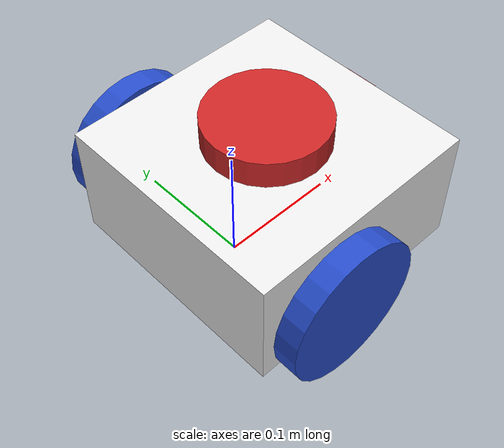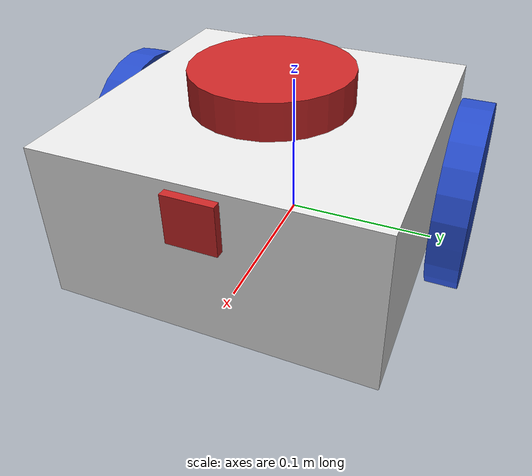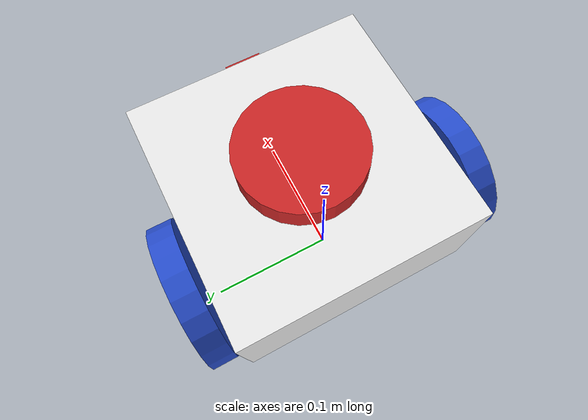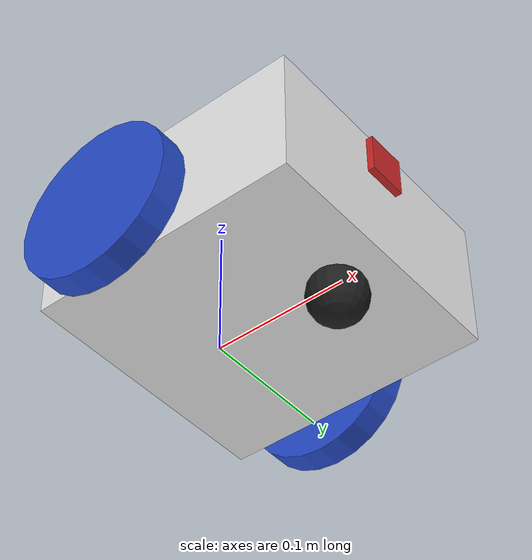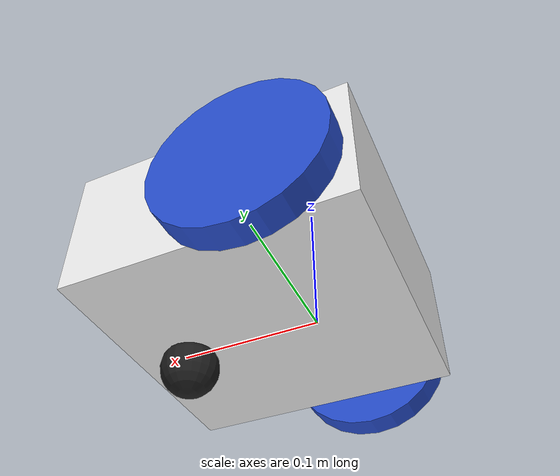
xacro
<?xml version="1.0"?>
<robot xmlns:xacro="http://www.ros.org/wiki/xacro"  name="robot">

    <xacro:include filename="inertial_macros.xacro"/>

    <!-- base link -->

    <link name="base_link"/>

    <!-- chassis -->
    <joint name="chassis_joint" type="fixed">
        <parent link="base_link"/>
        <child link="chassis"/>
        <origin xyz="-0.065 0 0"/>
    </joint>

    <link name="chassis" >
        <visual>
            <origin xyz="0.1 0 0.05"/>
            <geometry>
                <box size="0.2 0.2 0.1"/>
            </geometry>
        </visual>
        <collision>
            <origin xyz="0.1 0 0.05"/>
            <geometry>
                <box size="0.2 0.2 0.1"/>
            </geometry>
        </collision>
        <xacro:inertial_box mass="2" x="0.2" y="0.2" z="0.1">
            <origin xyz="0.1 0 0.05" rpy="0 0 0"/>
        </xacro:inertial_box>
    </link>
    <gazebo reference="chassis">
        <material>Gazebo/White</material>
    </gazebo>

    <!-- right wheel -->
    <joint name="right_wheel_joint" type="continuous">
        <parent link="base_link"/>
        <child link="right_wheel"/>
        <origin xyz="0 -0.115 0.04" rpy="${pi/2} 0 0" />
        <axis xyz="0 0 -1"/>
    </joint>

    <link name="right_wheel">
        <visual>
            <geometry>
                <cylinder radius="0.06" length="0.02"/>
            </geometry>
        </visual>
        <collision>
            <geometry>
                <cylinder radius="0.06" length="0.02"/>
            </geometry>
        </collision>
        <xacro:inertial_cylinder mass="0.1" length="0.02" radius="0.06">
            <origin xyz="0 0 0" rpy="0 0 0"/>
        </xacro:inertial_cylinder>
    </link>

    <gazebo reference="right_wheel">
        <material>Gazebo/Blue</material>
    </gazebo>

    <!-- left wheel -->
    <joint name="left_wheel_joint" type="continuous">
        <parent link="base_link"/>
        <child link="left_wheel"/>
        <origin xyz="0 0.115 0.04" rpy="-${pi/2} 0 0" />
        <axis xyz="0 0 1"/>
    </joint>

    <link name="left_wheel">
        <visual>
            <geometry>
                <cylinder radius="0.06" length="0.02"/>
            </geometry>
        </visual>
        <collision>
            <geometry>
                <cylinder radius="0.06" length="0.02"/>
            </geometry>
        </collision>
        <xacro:inertial_cylinder mass="0.1" length="0.02" radius="0.06">
            <origin xyz="0 0 0" rpy="0 0 0"/>
        </xacro:inertial_cylinder>
    </link>

    <gazebo reference="left_wheel">
        <material>Gazebo/Blue</material>
    </gazebo>

     <!-- CASTER WHEEL LINK -->

    <joint name="caster_wheel_joint" type="fixed">
        <parent link="base_link"/>
        <child link="caster_wheel"/>
        <origin xyz="0.096 0 -0.010"/>
    </joint>

    <link name="caster_wheel">
        <visual>
            <geometry>
                <sphere radius="0.021"/>
            </geometry>
        </visual>
        <collision>
            <geometry>
                <sphere radius="0.021"/>
            </geometry>
        </collision>
        <xacro:inertial_sphere mass="0.5" radius="0.021">
            <origin xyz="0 0 0" rpy="0 0 0"/>
        </xacro:inertial_sphere>
    </link>

    <gazebo reference="caster_wheel">
        <material>Gazebo/Black</material>
        <mu1 value="0.001"/>
        <mu2 value="0.001"/>
    </gazebo>

    <!-- including sensor control -->
    <xacro:include filename="gazebo_control.xacro" />

    <xacro:include filename="sensor.xacro" />
</robot>

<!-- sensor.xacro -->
<robot xmlns:xacro="http://www.ros.org/wiki/xacro" >

    <joint name="camera_joint" type="fixed">
        <parent link="chassis"/>
        <child link="camera_link"/>
        <origin xyz="0.200 0 0.08" rpy="0 0 0"/>
    </joint>

    <link name="camera_link">
        <visual>
            <geometry>
                <box size="0.010 0.03 0.03"/>
            </geometry>
        </visual>
    </link>

    <joint name="camera_optical_joint" type="fixed">
        <parent link="camera_link"/>
        <child link="camera_link_optical"/>
        <origin xyz="0 0 0" rpy="${-pi/2} 0 ${-pi/2}"/>
    </joint>

    <link name="camera_link_optical"></link>

    <gazebo reference="camera_link">
        <material>Gazebo/Red</material>

        <sensor name="camera" type="camera">
            <pose> 0 0 0 0 0 0 </pose>
            <visualize>false</visualize>
            <update_rate>10</update_rate>
            <camera>
                <horizontal_fov>1.089</horizontal_fov>
                <image>
                    <format>R8G8B8</format>
                    <width>640</width>
                    <height>480</height>
                </image>
                <clip>
                    <near>0.05</near>
                    <far>8.0</far>
                </clip>
            </camera>
            <plugin name="camera_controller" filename="libgazebo_ros_camera.so">
                <frame_name>camera_link_optical</frame_name>
            </plugin>
        </sensor>
    </gazebo>

    <joint name="laser_joint" type="fixed">
        <parent link="chassis"/>
        <child link="laser_frame"/>
        <origin xyz="0.1 0 0.103" rpy="0 0 0"/>
    </joint>

    <link name="laser_frame">
        <visual>
            <geometry>
                <cylinder radius="0.05" length="0.04"/>
            </geometry>
        </visual>
        <collision>
            <geometry>
                <cylinder radius="0.05" length="0.04"/>
            </geometry>
        </collision>
        <xacro:inertial_cylinder mass="0.1" length="0.04" radius="0.05">
            <origin xyz="0 0 0" rpy="0 0 0"/>
        </xacro:inertial_cylinder>
    </link>

    <gazebo reference="laser_frame">
        <material>Gazebo/Red</material>
        <sensor name="laser" type="ray">
            <pose>0 0 0 0 0 0</pose>
            <visualize>False</visualize>
            <update_rate>10</update_rate>
            <ray>
                <scan>
                    <horizontal>
                        <samples>360</samples>
                        <min_angle>-3.14</min_angle>
                        <max_angle>3.14</max_angle>
                    </horizontal>
                </scan>
                <range>
                    <min>0.75</min>
                    <max>6</max>
                </range>
            </ray>
            <plugin name="laser_controller" filename="libgazebo_ros_ray_sensor.so">
                <ros>
                    <argument>~/out:=scan</argument>
                </ros>
                <output_type>sensor_msgs/LaserScan</output_type>
                <frame_name>laser_frame</frame_name>
            </plugin>
        </sensor>
    </gazebo>

</robot>
